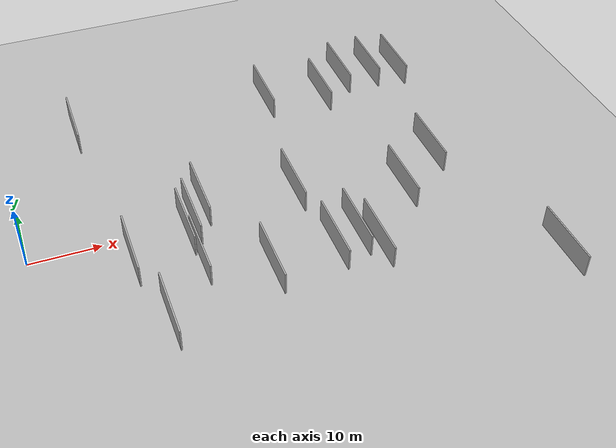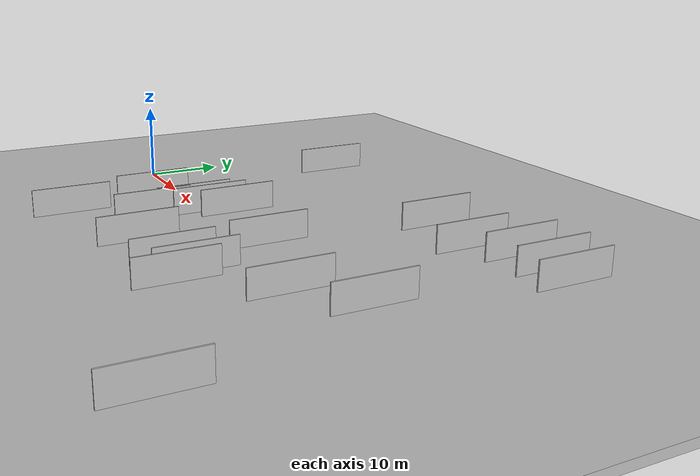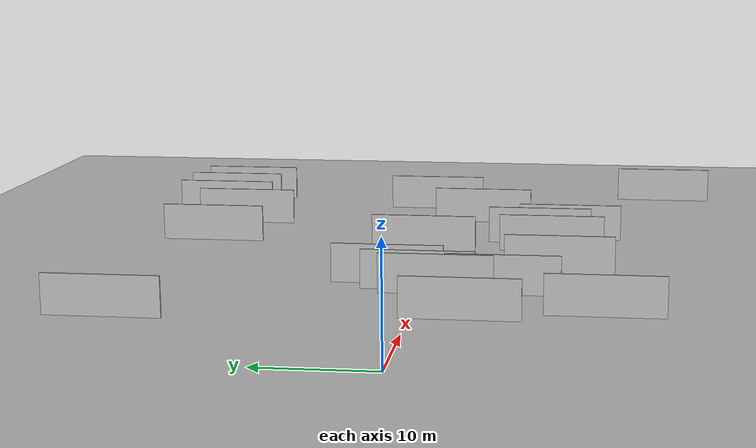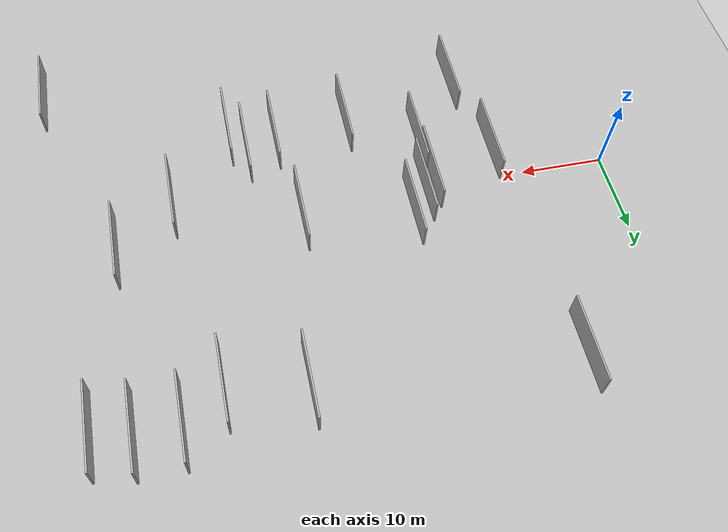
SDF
<?xml version="1.0" encoding="utf-8"?>

<sdf version="1.6">

   <world name="default">

      <gui fullscreen="0">

         <camera name="user_camera">

            <pose>-15 0 4.57585 0 0 0</pose>

            <view_controller>orbit</view_controller>

         </camera>

      </gui>

      <scene>

         <sky>

           <clouds>

             <speed>12</speed>

           </clouds>

         </sky>

         <ambient>0.4 0.4 0.4 1</ambient>

         <background>0.7 0.7 0.7 1</background>

         <shadows>1</shadows>

      </scene>

      <gravity>0 0 -9.8066</gravity>

      <magnetic_field>6e-06 2.3e-05 -4.2e-05</magnetic_field>

      <physics default="0" name="default_physics" type="ode">

         <ode>

            <solver>

               <type>quick</type>

               <iters>10</iters>

               <sor>1.0</sor>

               <use_dynamic_moi_rescaling>0</use_dynamic_moi_rescaling>

            </solver>

            <constraints>

               <cfm>0</cfm>

               <erp>0.2</erp>

               <contact_max_correcting_vel>100</contact_max_correcting_vel>

               <contact_surface_layer>0.001</contact_surface_layer>

            </constraints>

         </ode>

         <max_step_size>0.004</max_step_size>

         <real_time_factor>1</real_time_factor>

         <real_time_update_rate>250</real_time_update_rate>

      </physics>

      <light name="sun" type="directional">

         <cast_shadows>1</cast_shadows>

         <pose>0 0 10 0 0 0</pose>

         <diffuse>0.8 0.8 0.8 1</diffuse>

         <specular>0.2 0.2 0.2 1</specular>

         <attenuation>

            <range>1000</range>

            <constant>0.9</constant>

            <linear>0.01</linear>

            <quadratic>0.001</quadratic>

         </attenuation>

         <direction>-0.5 0.1 -0.9</direction>

      </light>

      <include>

         <name>ground_plane_1</name>

         <uri>model://HANNAS_ground_plane</uri>

         <pose>0 0 0  0 0 0</pose>

      </include>

      <include>

         <name>ground_plane_2</name>

         <uri>model://HANNAS_ground_plane</uri>

         <pose>100 0 0  0 0 0</pose>

      </include>

      <model name="HANNAS_wall_1">

         <static>1</static>

         <pose frame="">63.9513 24.1016 0.0 0.000000 0.000000 1.570796</pose>

         <link name="link">

            <pose frame="">0 0 2.00 0 0 0</pose>

            <collision name="collision">

               <geometry>

                  <box>

                     <size>10.00 0.2 4.00</size>

                  </box>

               </geometry>

               <max_contacts>10</max_contacts>

               <surface>

                  <contact>

                     <ode/>

                  </contact>

                  <bounce/>

                  <friction>

                     <torsional>

                        <ode/>

                     </torsional>

                     <ode/>

                  </friction>

               </surface>

            </collision>

            <visual name="visual">

               <cast_shadows>0</cast_shadows>

               <geometry>

                  <box>

                     <size>10.00 0.2 4.00</size>

                  </box>

               </geometry>

               <material>

                  <script>

                     <uri>model://HANNAS_wall/materials/scripts</uri>

                     <uri>model://HANNAS_wall/materials/textures</uri>

                     <name>vrc/HANNAS_wall</name>

                  </script>

               </material>

            </visual>

            <self_collide>0</self_collide>

            <enable_wind>0</enable_wind>

            <kinematic>0</kinematic>

         </link>

      </model>

      <model name="HANNAS_wall_2">

         <static>1</static>

         <pose frame="">30.0684 -11.8076 0.0 0.000000 0.000000 1.570796</pose>

         <link name="link">

            <pose frame="">0 0 2.00 0 0 0</pose>

            <collision name="collision">

               <geometry>

                  <box>

                     <size>10.00 0.2 4.00</size>

                  </box>

               </geometry>

               <max_contacts>10</max_contacts>

               <surface>

                  <contact>

                     <ode/>

                  </contact>

                  <bounce/>

                  <friction>

                     <torsional>

                        <ode/>

                     </torsional>

                     <ode/>

                  </friction>

               </surface>

            </collision>

            <visual name="visual">

               <cast_shadows>0</cast_shadows>

               <geometry>

                  <box>

                     <size>10.00 0.2 4.00</size>

                  </box>

               </geometry>

               <material>

                  <script>

                     <uri>model://HANNAS_wall/materials/scripts</uri>

                     <uri>model://HANNAS_wall/materials/textures</uri>

                     <name>vrc/HANNAS_wall</name>

                  </script>

               </material>

            </visual>

            <self_collide>0</self_collide>

            <enable_wind>0</enable_wind>

            <kinematic>0</kinematic>

         </link>

      </model>

      <model name="HANNAS_wall_3">

         <static>1</static>

         <pose frame="">54.5035 24.8573 0.0 0.000000 0.000000 1.570796</pose>

         <link name="link">

            <pose frame="">0 0 2.00 0 0 0</pose>

            <collision name="collision">

               <geometry>

                  <box>

                     <size>10.00 0.2 4.00</size>

                  </box>

               </geometry>

               <max_contacts>10</max_contacts>

               <surface>

                  <contact>

                     <ode/>

                  </contact>

                  <bounce/>

                  <friction>

                     <torsional>

                        <ode/>

                     </torsional>

                     <ode/>

                  </friction>

               </surface>

            </collision>

            <visual name="visual">

               <cast_shadows>0</cast_shadows>

               <geometry>

                  <box>

                     <size>10.00 0.2 4.00</size>

                  </box>

               </geometry>

               <material>

                  <script>

                     <uri>model://HANNAS_wall/materials/scripts</uri>

                     <uri>model://HANNAS_wall/materials/textures</uri>

                     <name>vrc/HANNAS_wall</name>

                  </script>

               </material>

            </visual>

            <self_collide>0</self_collide>

            <enable_wind>0</enable_wind>

            <kinematic>0</kinematic>

         </link>

      </model>

      <model name="HANNAS_wall_4">

         <static>1</static>

         <pose frame="">21.7196 -7.2167 0.0 0.000000 0.000000 1.570796</pose>

         <link name="link">

            <pose frame="">0 0 2.00 0 0 0</pose>

            <collision name="collision">

               <geometry>

                  <box>

                     <size>10.00 0.2 4.00</size>

                  </box>

               </geometry>

               <max_contacts>10</max_contacts>

               <surface>

                  <contact>

                     <ode/>

                  </contact>

                  <bounce/>

                  <friction>

                     <torsional>

                        <ode/>

                     </torsional>

                     <ode/>

                  </friction>

               </surface>

            </collision>

            <visual name="visual">

               <cast_shadows>0</cast_shadows>

               <geometry>

                  <box>

                     <size>10.00 0.2 4.00</size>

                  </box>

               </geometry>

               <material>

                  <script>

                     <uri>model://HANNAS_wall/materials/scripts</uri>

                     <uri>model://HANNAS_wall/materials/textures</uri>

                     <name>vrc/HANNAS_wall</name>

                  </script>

               </material>

            </visual>

            <self_collide>0</self_collide>

            <enable_wind>0</enable_wind>

            <kinematic>0</kinematic>

         </link>

      </model>

      <model name="HANNAS_wall_5">

         <static>1</static>

         <pose frame="">21.3054 -1.4818 0.0 0.000000 0.000000 1.570796</pose>

         <link name="link">

            <pose frame="">0 0 2.00 0 0 0</pose>

            <collision name="collision">

               <geometry>

                  <box>

                     <size>10.00 0.2 4.00</size>

                  </box>

               </geometry>

               <max_contacts>10</max_contacts>

               <surface>

                  <contact>

                     <ode/>

                  </contact>

                  <bounce/>

                  <friction>

                     <torsional>

                        <ode/>

                     </torsional>

                     <ode/>

                  </friction>

               </surface>

            </collision>

            <visual name="visual">

               <cast_shadows>0</cast_shadows>

               <geometry>

                  <box>

                     <size>10.00 0.2 4.00</size>

                  </box>

               </geometry>

               <material>

                  <script>

                     <uri>model://HANNAS_wall/materials/scripts</uri>

                     <uri>model://HANNAS_wall/materials/textures</uri>

                     <name>vrc/HANNAS_wall</name>

                  </script>

               </material>

            </visual>

            <self_collide>0</self_collide>

            <enable_wind>0</enable_wind>

            <kinematic>0</kinematic>

         </link>

      </model>

      <model name="HANNAS_wall_6">

         <static>1</static>

         <pose frame="">67.3565 -22.3016 0.0 0.000000 0.000000 1.570796</pose>

         <link name="link">

            <pose frame="">0 0 2.00 0 0 0</pose>

            <collision name="collision">

               <geometry>

                  <box>

                     <size>10.00 0.2 4.00</size>

                  </box>

               </geometry>

               <max_contacts>10</max_contacts>

               <surface>

                  <contact>

                     <ode/>

                  </contact>

                  <bounce/>

                  <friction>

                     <torsional>

                        <ode/>

                     </torsional>

                     <ode/>

                  </friction>

               </surface>

            </collision>

            <visual name="visual">

               <cast_shadows>0</cast_shadows>

               <geometry>

                  <box>

                     <size>10.00 0.2 4.00</size>

                  </box>

               </geometry>

               <material>

                  <script>

                     <uri>model://HANNAS_wall/materials/scripts</uri>

                     <uri>model://HANNAS_wall/materials/textures</uri>

                     <name>vrc/HANNAS_wall</name>

                  </script>

               </material>

            </visual>

            <self_collide>0</self_collide>

            <enable_wind>0</enable_wind>

            <kinematic>0</kinematic>

         </link>

      </model>

      <model name="HANNAS_wall_7">

         <static>1</static>

         <pose frame="">39.2232 -10.7783 0.0 0.000000 0.000000 1.570796</pose>

         <link name="link">

            <pose frame="">0 0 2.00 0 0 0</pose>

            <collision name="collision">

               <geometry>

                  <box>

                     <size>10.00 0.2 4.00</size>

                  </box>

               </geometry>

               <max_contacts>10</max_contacts>

               <surface>

                  <contact>

                     <ode/>

                  </contact>

                  <bounce/>

                  <friction>

                     <torsional>

                        <ode/>

                     </torsional>

                     <ode/>

                  </friction>

               </surface>

            </collision>

            <visual name="visual">

               <cast_shadows>0</cast_shadows>

               <geometry>

                  <box>

                     <size>10.00 0.2 4.00</size>

                  </box>

               </geometry>

               <material>

                  <script>

                     <uri>model://HANNAS_wall/materials/scripts</uri>

                     <uri>model://HANNAS_wall/materials/textures</uri>

                     <name>vrc/HANNAS_wall</name>

                  </script>

               </material>

            </visual>

            <self_collide>0</self_collide>

            <enable_wind>0</enable_wind>

            <kinematic>0</kinematic>

         </link>

      </model>

      <model name="HANNAS_wall_8">

         <static>1</static>

         <pose frame="">13.1606 -4.3331 0.0 0.000000 0.000000 1.570796</pose>

         <link name="link">

            <pose frame="">0 0 2.00 0 0 0</pose>

            <collision name="collision">

               <geometry>

                  <box>

                     <size>10.00 0.2 4.00</size>

                  </box>

               </geometry>

               <max_contacts>10</max_contacts>

               <surface>

                  <contact>

                     <ode/>

                  </contact>

                  <bounce/>

                  <friction>

                     <torsional>

                        <ode/>

                     </torsional>

                     <ode/>

                  </friction>

               </surface>

            </collision>

            <visual name="visual">

               <cast_shadows>0</cast_shadows>

               <geometry>

                  <box>

                     <size>10.00 0.2 4.00</size>

                  </box>

               </geometry>

               <material>

                  <script>

                     <uri>model://HANNAS_wall/materials/scripts</uri>

                     <uri>model://HANNAS_wall/materials/textures</uri>

                     <name>vrc/HANNAS_wall</name>

                  </script>

               </material>

            </visual>

            <self_collide>0</self_collide>

            <enable_wind>0</enable_wind>

            <kinematic>0</kinematic>

         </link>

      </model>

      <model name="HANNAS_wall_9">

         <static>1</static>

         <pose frame="">24.7222 3.1588 0.0 0.000000 0.000000 1.570796</pose>

         <link name="link">

            <pose frame="">0 0 2.00 0 0 0</pose>

            <collision name="collision">

               <geometry>

                  <box>

                     <size>10.00 0.2 4.00</size>

                  </box>

               </geometry>

               <max_contacts>10</max_contacts>

               <surface>

                  <contact>

                     <ode/>

                  </contact>

                  <bounce/>

                  <friction>

                     <torsional>

                        <ode/>

                     </torsional>

                     <ode/>

                  </friction>

               </surface>

            </collision>

            <visual name="visual">

               <cast_shadows>0</cast_shadows>

               <geometry>

                  <box>

                     <size>10.00 0.2 4.00</size>

                  </box>

               </geometry>

               <material>

                  <script>

                     <uri>model://HANNAS_wall/materials/scripts</uri>

                     <uri>model://HANNAS_wall/materials/textures</uri>

                     <name>vrc/HANNAS_wall</name>

                  </script>

               </material>

            </visual>

            <self_collide>0</self_collide>

            <enable_wind>0</enable_wind>

            <kinematic>0</kinematic>

         </link>

      </model>

      <model name="HANNAS_wall_10">

         <static>1</static>

         <pose frame="">15.3575 -15.9654 0.0 0.000000 0.000000 1.570796</pose>

         <link name="link">

            <pose frame="">0 0 2.00 0 0 0</pose>

            <collision name="collision">

               <geometry>

                  <box>

                     <size>10.00 0.2 4.00</size>

                  </box>

               </geometry>

               <max_contacts>10</max_contacts>

               <surface>

                  <contact>

                     <ode/>

                  </contact>

                  <bounce/>

                  <friction>

                     <torsional>

                        <ode/>

                     </torsional>

                     <ode/>

                  </friction>

               </surface>

            </collision>

            <visual name="visual">

               <cast_shadows>0</cast_shadows>

               <geometry>

                  <box>

                     <size>10.00 0.2 4.00</size>

                  </box>

               </geometry>

               <material>

                  <script>

                     <uri>model://HANNAS_wall/materials/scripts</uri>

                     <uri>model://HANNAS_wall/materials/textures</uri>

                     <name>vrc/HANNAS_wall</name>

                  </script>

               </material>

            </visual>

            <self_collide>0</self_collide>

            <enable_wind>0</enable_wind>

            <kinematic>0</kinematic>

         </link>

      </model>

      <model name="HANNAS_wall_11">

         <static>1</static>

         <pose frame="">40.8725 22.8842 0.0 0.000000 0.000000 1.570796</pose>

         <link name="link">

            <pose frame="">0 0 2.00 0 0 0</pose>

            <collision name="collision">

               <geometry>

                  <box>

                     <size>10.00 0.2 4.00</size>

                  </box>

               </geometry>

               <max_contacts>10</max_contacts>

               <surface>

                  <contact>

                     <ode/>

                  </contact>

                  <bounce/>

                  <friction>

                     <torsional>

                        <ode/>

                     </torsional>

                     <ode/>

                  </friction>

               </surface>

            </collision>

            <visual name="visual">

               <cast_shadows>0</cast_shadows>

               <geometry>

                  <box>

                     <size>10.00 0.2 4.00</size>

                  </box>

               </geometry>

               <material>

                  <script>

                     <uri>model://HANNAS_wall/materials/scripts</uri>

                     <uri>model://HANNAS_wall/materials/textures</uri>

                     <name>vrc/HANNAS_wall</name>

                  </script>

               </material>

            </visual>

            <self_collide>0</self_collide>

            <enable_wind>0</enable_wind>

            <kinematic>0</kinematic>

         </link>

      </model>

      <model name="HANNAS_wall_12">

         <static>1</static>

         <pose frame="">49.8933 21.5859 0.0 0.000000 0.000000 1.570796</pose>

         <link name="link">

            <pose frame="">0 0 2.00 0 0 0</pose>

            <collision name="collision">

               <geometry>

                  <box>

                     <size>10.00 0.2 4.00</size>

                  </box>

               </geometry>

               <max_contacts>10</max_contacts>

               <surface>

                  <contact>

                     <ode/>

                  </contact>

                  <bounce/>

                  <friction>

                     <torsional>

                        <ode/>

                     </torsional>

                     <ode/>

                  </friction>

               </surface>

            </collision>

            <visual name="visual">

               <cast_shadows>0</cast_shadows>

               <geometry>

                  <box>

                     <size>10.00 0.2 4.00</size>

                  </box>

               </geometry>

               <material>

                  <script>

                     <uri>model://HANNAS_wall/materials/scripts</uri>

                     <uri>model://HANNAS_wall/materials/textures</uri>

                     <name>vrc/HANNAS_wall</name>

                  </script>

               </material>

            </visual>

            <self_collide>0</self_collide>

            <enable_wind>0</enable_wind>

            <kinematic>0</kinematic>

         </link>

      </model>

      <model name="HANNAS_wall_13">

         <static>1</static>

         <pose frame="">52.7940 -3.0978 0.0 0.000000 0.000000 1.570796</pose>

         <link name="link">

            <pose frame="">0 0 2.00 0 0 0</pose>

            <collision name="collision">

               <geometry>

                  <box>

                     <size>10.00 0.2 4.00</size>

                  </box>

               </geometry>

               <max_contacts>10</max_contacts>

               <surface>

                  <contact>

                     <ode/>

                  </contact>

                  <bounce/>

                  <friction>

                     <torsional>

                        <ode/>

                     </torsional>

                     <ode/>

                  </friction>

               </surface>

            </collision>

            <visual name="visual">

               <cast_shadows>0</cast_shadows>

               <geometry>

                  <box>

                     <size>10.00 0.2 4.00</size>

                  </box>

               </geometry>

               <material>

                  <script>

                     <uri>model://HANNAS_wall/materials/scripts</uri>

                     <uri>model://HANNAS_wall/materials/textures</uri>

                     <name>vrc/HANNAS_wall</name>

                  </script>

               </material>

            </visual>

            <self_collide>0</self_collide>

            <enable_wind>0</enable_wind>

            <kinematic>0</kinematic>

         </link>

      </model>

      <model name="HANNAS_wall_14">

         <static>1</static>

         <pose frame="">10.9464 24.5991 0.0 0.000000 0.000000 1.570796</pose>

         <link name="link">

            <pose frame="">0 0 2.00 0 0 0</pose>

            <collision name="collision">

               <geometry>

                  <box>

                     <size>10.00 0.2 4.00</size>

                  </box>

               </geometry>

               <max_contacts>10</max_contacts>

               <surface>

                  <contact>

                     <ode/>

                  </contact>

                  <bounce/>

                  <friction>

                     <torsional>

                        <ode/>

                     </torsional>

                     <ode/>

                  </friction>

               </surface>

            </collision>

            <visual name="visual">

               <cast_shadows>0</cast_shadows>

               <geometry>

                  <box>

                     <size>10.00 0.2 4.00</size>

                  </box>

               </geometry>

               <material>

                  <script>

                     <uri>model://HANNAS_wall/materials/scripts</uri>

                     <uri>model://HANNAS_wall/materials/textures</uri>

                     <name>vrc/HANNAS_wall</name>

                  </script>

               </material>

            </visual>

            <self_collide>0</self_collide>

            <enable_wind>0</enable_wind>

            <kinematic>0</kinematic>

         </link>

      </model>

      <model name="HANNAS_wall_15">

         <static>1</static>

         <pose frame="">42.9623 -9.4633 0.0 0.000000 0.000000 1.570796</pose>

         <link name="link">

            <pose frame="">0 0 2.00 0 0 0</pose>

            <collision name="collision">

               <geometry>

                  <box>

                     <size>10.00 0.2 4.00</size>

                  </box>

               </geometry>

               <max_contacts>10</max_contacts>

               <surface>

                  <contact>

                     <ode/>

                  </contact>

                  <bounce/>

                  <friction>

                     <torsional>

                        <ode/>

                     </torsional>

                     <ode/>

                  </friction>

               </surface>

            </collision>

            <visual name="visual">

               <cast_shadows>0</cast_shadows>

               <geometry>

                  <box>

                     <size>10.00 0.2 4.00</size>

                  </box>

               </geometry>

               <material>

                  <script>

                     <uri>model://HANNAS_wall/materials/scripts</uri>

                     <uri>model://HANNAS_wall/materials/textures</uri>

                     <name>vrc/HANNAS_wall</name>

                  </script>

               </material>

            </visual>

            <self_collide>0</self_collide>

            <enable_wind>0</enable_wind>

            <kinematic>0</kinematic>

         </link>

      </model>

      <model name="HANNAS_wall_16">

         <static>1</static>

         <pose frame="">22.6311 0.2286 0.0 0.000000 0.000000 1.570796</pose>

         <link name="link">

            <pose frame="">0 0 2.00 0 0 0</pose>

            <collision name="collision">

               <geometry>

                  <box>

                     <size>10.00 0.2 4.00</size>

                  </box>

               </geometry>

               <max_contacts>10</max_contacts>

               <surface>

                  <contact>

                     <ode/>

                  </contact>

                  <bounce/>

                  <friction>

                     <torsional>

                        <ode/>

                     </torsional>

                     <ode/>

                  </friction>

               </surface>

            </collision>

            <visual name="visual">

               <cast_shadows>0</cast_shadows>

               <geometry>

                  <box>

                     <size>10.00 0.2 4.00</size>

                  </box>

               </geometry>

               <material>

                  <script>

                     <uri>model://HANNAS_wall/materials/scripts</uri>

                     <uri>model://HANNAS_wall/materials/textures</uri>

                     <name>vrc/HANNAS_wall</name>

                  </script>

               </material>

            </visual>

            <self_collide>0</self_collide>

            <enable_wind>0</enable_wind>

            <kinematic>0</kinematic>

         </link>

      </model>

      <model name="HANNAS_wall_17">

         <static>1</static>

         <pose frame="">59.6003 24.9572 0.0 0.000000 0.000000 1.570796</pose>

         <link name="link">

            <pose frame="">0 0 2.00 0 0 0</pose>

            <collision name="collision">

               <geometry>

                  <box>

                     <size>10.00 0.2 4.00</size>

                  </box>

               </geometry>

               <max_contacts>10</max_contacts>

               <surface>

                  <contact>

                     <ode/>

                  </contact>

                  <bounce/>

                  <friction>

                     <torsional>

                        <ode/>

                     </torsional>

                     <ode/>

                  </friction>

               </surface>

            </collision>

            <visual name="visual">

               <cast_shadows>0</cast_shadows>

               <geometry>

                  <box>

                     <size>10.00 0.2 4.00</size>

                  </box>

               </geometry>

               <material>

                  <script>

                     <uri>model://HANNAS_wall/materials/scripts</uri>

                     <uri>model://HANNAS_wall/materials/textures</uri>

                     <name>vrc/HANNAS_wall</name>

                  </script>

               </material>

            </visual>

            <self_collide>0</self_collide>

            <enable_wind>0</enable_wind>

            <kinematic>0</kinematic>

         </link>

      </model>

      <model name="HANNAS_wall_18">

         <static>1</static>

         <pose frame="">59.8368 2.4650 0.0 0.000000 0.000000 1.570796</pose>

         <link name="link">

            <pose frame="">0 0 2.00 0 0 0</pose>

            <collision name="collision">

               <geometry>

                  <box>

                     <size>10.00 0.2 4.00</size>

                  </box>

               </geometry>

               <max_contacts>10</max_contacts>

               <surface>

                  <contact>

                     <ode/>

                  </contact>

                  <bounce/>

                  <friction>

                     <torsional>

                        <ode/>

                     </torsional>

                     <ode/>

                  </friction>

               </surface>

            </collision>

            <visual name="visual">

               <cast_shadows>0</cast_shadows>

               <geometry>

                  <box>

                     <size>10.00 0.2 4.00</size>

                  </box>

               </geometry>

               <material>

                  <script>

                     <uri>model://HANNAS_wall/materials/scripts</uri>

                     <uri>model://HANNAS_wall/materials/textures</uri>

                     <name>vrc/HANNAS_wall</name>

                  </script>

               </material>

            </visual>

            <self_collide>0</self_collide>

            <enable_wind>0</enable_wind>

            <kinematic>0</kinematic>

         </link>

      </model>

      <model name="HANNAS_wall_19">

         <static>1</static>

         <pose frame="">37.8963 1.4682 0.0 0.000000 0.000000 1.570796</pose>

         <link name="link">

            <pose frame="">0 0 2.00 0 0 0</pose>

            <collision name="collision">

               <geometry>

                  <box>

                     <size>10.00 0.2 4.00</size>

                  </box>

               </geometry>

               <max_contacts>10</max_contacts>

               <surface>

                  <contact>

                     <ode/>

                  </contact>

                  <bounce/>

                  <friction>

                     <torsional>

                        <ode/>

                     </torsional>

                     <ode/>

                  </friction>

               </surface>

            </collision>

            <visual name="visual">

               <cast_shadows>0</cast_shadows>

               <geometry>

                  <box>

                     <size>10.00 0.2 4.00</size>

                  </box>

               </geometry>

               <material>

                  <script>

                     <uri>model://HANNAS_wall/materials/scripts</uri>

                     <uri>model://HANNAS_wall/materials/textures</uri>

                     <name>vrc/HANNAS_wall</name>

                  </script>

               </material>

            </visual>

            <self_collide>0</self_collide>

            <enable_wind>0</enable_wind>

            <kinematic>0</kinematic>

         </link>

      </model>

      <model name="HANNAS_wall_20">

         <static>1</static>

         <pose frame="">44.8805 -12.3867 0.0 0.000000 0.000000 1.570796</pose>

         <link name="link">

            <pose frame="">0 0 2.00 0 0 0</pose>

            <collision name="collision">

               <geometry>

                  <box>

                     <size>10.00 0.2 4.00</size>

                  </box>

               </geometry>

               <max_contacts>10</max_contacts>

               <surface>

                  <contact>

                     <ode/>

                  </contact>

                  <bounce/>

                  <friction>

                     <torsional>

                        <ode/>

                     </torsional>

                     <ode/>

                  </friction>

               </surface>

            </collision>

            <visual name="visual">

               <cast_shadows>0</cast_shadows>

               <geometry>

                  <box>

                     <size>10.00 0.2 4.00</size>

                  </box>

               </geometry>

               <material>

                  <script>

                     <uri>model://HANNAS_wall/materials/scripts</uri>

                     <uri>model://HANNAS_wall/materials/textures</uri>

                     <name>vrc/HANNAS_wall</name>

                  </script>

               </material>

            </visual>

            <self_collide>0</self_collide>

            <enable_wind>0</enable_wind>

            <kinematic>0</kinematic>

         </link>

      </model>

   </world>

</sdf>

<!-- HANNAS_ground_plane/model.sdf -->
<sdf version="1.4">
<model name="HANNAS_ground_plane">
  <static>true</static>
    <link name="link">
      <collision name="collision">
        <geometry>
          <plane>
            <normal>0 0 1</normal>
            <size>1000 1000</size>
          </plane>
        </geometry>
        <surface>
          <friction>
            <ode>
              <mu>100</mu>
              <mu2>50</mu2>
            </ode>
          </friction>
        </surface>
      </collision>
      <visual name="visual">
        <cast_shadows>false</cast_shadows>
        <geometry>
          <plane>
            <normal>0 0 1</normal>
            <size>1000 1000</size>
          </plane>
        </geometry>
        <material>
          <script>
            <uri>model://HANNAS_ground_plane/materials/scripts/HANNAS_ground_plane.material</uri>
	    <uri>model://HANNAS_ground_plane/materials/textures</uri>
            <name>HANNASGroundPlane/Image</name>
          </script>
        </material>
      </visual>
    </link>
  </model>
</sdf>
